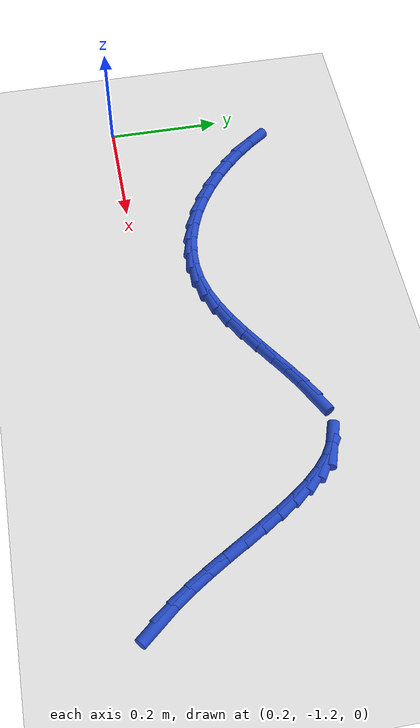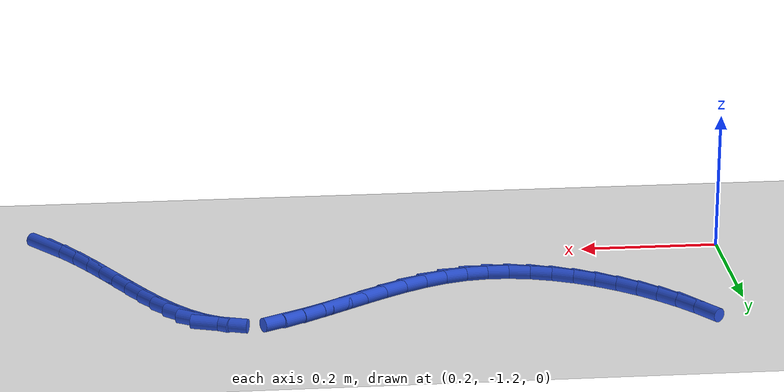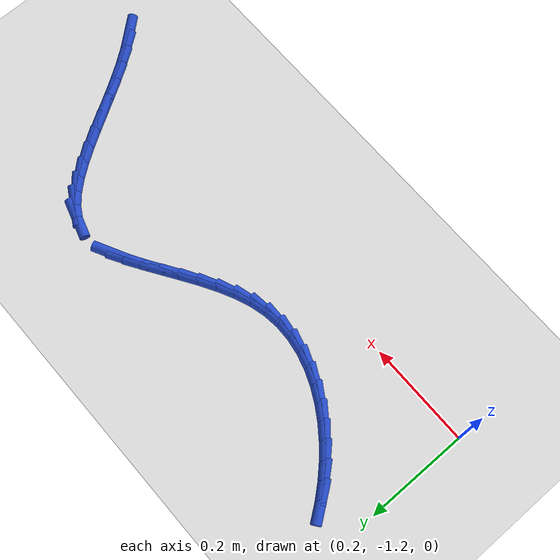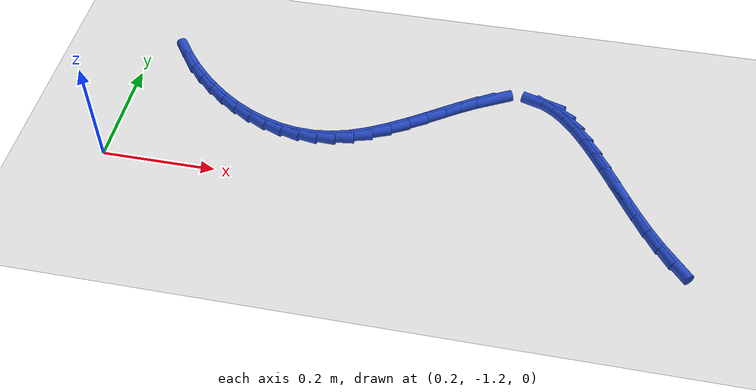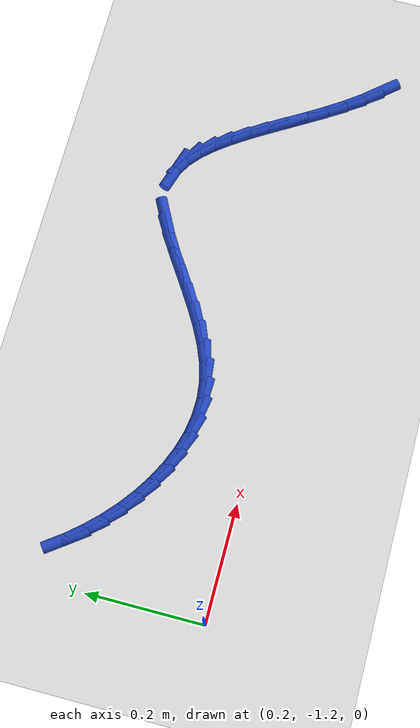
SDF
<sdf version="1.6">
 <world name="default">
  <model name="ground_plane">
   <static>1</static>
   <link name="link">
    <collision name="collision">
     <geometry><plane><normal>0 0 1</normal><size>100 100</size></plane></geometry>
     <surface><friction><ode><mu>100</mu><mu2>50</mu2></ode></friction></surface>
    </collision>
    <visual name="visual">
     <cast_shadows>0</cast_shadows>
     <geometry><plane><normal>0 0 1</normal><size>100 100</size></plane></geometry>
     <material>
      <script><uri>file://media/materials/scripts/gazebo.material</uri><name>Gazebo/WhiteGlow</name></script>
     </material>
    </visual>
   </link>
  </model>
  <model name="line">
   <link name="link_202">
    <pose>1.1746801814636494 -1.257423109678454 0.01 0 1.57 -0.8694576224787947</pose>
    <collision name="collision">
     <geometry><cylinder><radius>0.01</radius><length>0.08</length></cylinder></geometry>
    </collision>
    <visual name="visual">
     <material>
      <script><name>Gazebo/Blue</name><uri>file://media/materials/scripts/gazebo.material</uri></script>
     </material>
     <geometry><cylinder><radius>0.01</radius><length>0.08</length></cylinder></geometry>
    </visual>
   </link>
   <link name="link_203">
    <pose>1.1533670255257007 -1.2321878794401409 0.01 0 1.57 -0.9373500251384979</pose>
    <collision name="collision">
     <geometry><cylinder><radius>0.01</radius><length>0.08</length></cylinder></geometry>
    </collision>
    <visual name="visual">
     <material>
      <script><name>Gazebo/Blue</name><uri>file://media/materials/scripts/gazebo.material</uri></script>
     </material>
     <geometry><cylinder><radius>0.01</radius><length>0.08</length></cylinder></geometry>
    </visual>
   </link>
   <link name="link_204">
    <pose>1.1329652245301907 -1.2044078925939352 0.01 0 1.57 -0.9846037328601056</pose>
    <collision name="collision">
     <geometry><cylinder><radius>0.01</radius><length>0.08</length></cylinder></geometry>
    </collision>
    <visual name="visual">
     <material>
      <script><name>Gazebo/Blue</name><uri>file://media/materials/scripts/gazebo.material</uri></script>
     </material>
     <geometry><cylinder><radius>0.01</radius><length>0.08</length></cylinder></geometry>
    </visual>
   </link>
   <link name="link_205">
    <pose>1.1132945576169517 -1.1747858637657724 0.01 0 1.57 -1.0141224252620311</pose>
    <collision name="collision">
     <geometry><cylinder><radius>0.01</radius><length>0.08</length></cylinder></geometry>
    </collision>
    <visual name="visual">
     <material>
      <script><name>Gazebo/Blue</name><uri>file://media/materials/scripts/gazebo.material</uri></script>
     </material>
     <geometry><cylinder><radius>0.01</radius><length>0.08</length></cylinder></geometry>
    </visual>
   </link>
   <link name="link_206">
    <pose>1.0941799209303698 -1.144071019262089 0.01 0 1.57 -1.0280446057666501</pose>
    <collision name="collision">
     <geometry><cylinder><radius>0.01</radius><length>0.08</length></cylinder></geometry>
    </collision>
    <visual name="visual">
     <material>
      <script><name>Gazebo/Blue</name><uri>file://media/materials/scripts/gazebo.material</uri></script>
     </material>
     <geometry><cylinder><radius>0.01</radius><length>0.08</length></cylinder></geometry>
    </visual>
   </link>
   <link name="link_207">
    <pose>1.0754462106148281 -1.113012585389318 0.01 0 1.57 -1.0271158571693322</pose>
    <collision name="collision">
     <geometry><cylinder><radius>0.01</radius><length>0.08</length></cylinder></geometry>
    </collision>
    <visual name="visual">
     <material>
      <script><name>Gazebo/Blue</name><uri>file://media/materials/scripts/gazebo.material</uri></script>
     </material>
     <geometry><cylinder><radius>0.01</radius><length>0.08</length></cylinder></geometry>
    </visual>
   </link>
   <link name="link_208">
    <pose>1.0569183228147128 -1.0823597884538967 0.01 0 1.57 -1.0107122934479231</pose>
    <collision name="collision">
     <geometry><cylinder><radius>0.01</radius><length>0.08</length></cylinder></geometry>
    </collision>
    <visual name="visual">
     <material>
      <script><name>Gazebo/Blue</name><uri>file://media/materials/scripts/gazebo.material</uri></script>
     </material>
     <geometry><cylinder><radius>0.01</radius><length>0.08</length></cylinder></geometry>
    </visual>
   </link>
   <link name="link_209">
    <pose>1.0384211536744077 -1.0528618547622577 0.01 0 1.57 -0.9766556507612796</pose>
    <collision name="collision">
     <geometry><cylinder><radius>0.01</radius><length>0.08</length></cylinder></geometry>
    </collision>
    <visual name="visual">
     <material>
      <script><name>Gazebo/Blue</name><uri>file://media/materials/scripts/gazebo.material</uri></script>
     </material>
     <geometry><cylinder><radius>0.01</radius><length>0.08</length></cylinder></geometry>
    </visual>
   </link>
   <link name="link_210">
    <pose>1.019779599338298 -1.0252680106208376 0.01 0 1.57 -0.9207672561650833</pose>
    <collision name="collision">
     <geometry><cylinder><radius>0.01</radius><length>0.08</length></cylinder></geometry>
    </collision>
    <visual name="visual">
     <material>
      <script><name>Gazebo/Blue</name><uri>file://media/materials/scripts/gazebo.material</uri></script>
     </material>
     <geometry><cylinder><radius>0.01</radius><length>0.08</length></cylinder></geometry>
    </visual>
   </link>
   <link name="link_211">
    <pose>1.0008185559507679 -1.0003274823360697 0.01 0 1.57 -0.8361514616978324</pose>
    <collision name="collision">
     <geometry><cylinder><radius>0.01</radius><length>0.08</length></cylinder></geometry>
    </collision>
    <visual name="visual">
     <material>
      <script><name>Gazebo/Blue</name><uri>file://media/materials/scripts/gazebo.material</uri></script>
     </material>
     <geometry><cylinder><radius>0.01</radius><length>0.08</length></cylinder></geometry>
    </visual>
   </link>
   <link name="link_212">
    <pose>0.9813629196562028 -0.978789496214391 0.01 0 1.57 -0.7125069460921573</pose>
    <collision name="collision">
     <geometry><cylinder><radius>0.01</radius><length>0.08</length></cylinder></geometry>
    </collision>
    <visual name="visual">
     <material>
      <script><name>Gazebo/Blue</name><uri>file://media/materials/scripts/gazebo.material</uri></script>
     </material>
     <geometry><cylinder><radius>0.01</radius><length>0.08</length></cylinder></geometry>
    </visual>
   </link>
   <link name="link_213">
    <pose>0.9612375865989868 -0.9614032785622347 0.01 0 1.57 -0.5370163856510745</pose>
    <collision name="collision">
     <geometry><cylinder><radius>0.01</radius><length>0.08</length></cylinder></geometry>
    </collision>
    <visual name="visual">
     <material>
      <script><name>Gazebo/Blue</name><uri>file://media/materials/scripts/gazebo.material</uri></script>
     </material>
     <geometry><cylinder><radius>0.01</radius><length>0.08</length></cylinder></geometry>
    </visual>
   </link>
   <link name="link_214">
    <pose>0.9402674529235053 -0.9489180556860366 0.01 0 1.57 -0.30135601421333846</pose>
    <collision name="collision">
     <geometry><cylinder><radius>0.01</radius><length>0.08</length></cylinder></geometry>
    </collision>
    <visual name="visual">
     <material>
      <script><name>Gazebo/Blue</name><uri>file://media/materials/scripts/gazebo.material</uri></script>
     </material>
     <geometry><cylinder><radius>0.01</radius><length>0.08</length></cylinder></geometry>
    </visual>
   </link>
   <link name="link_218">
    <pose>0.8454109447979264 -0.95649758229843 0.01 0 1.57 0.47735937970174863</pose>
    <collision name="collision">
     <geometry><cylinder><radius>0.01</radius><length>0.08</length></cylinder></geometry>
    </collision>
    <visual name="visual">
     <material>
      <script><name>Gazebo/Blue</name><uri>file://media/materials/scripts/gazebo.material</uri></script>
     </material>
     <geometry><cylinder><radius>0.01</radius><length>0.08</length></cylinder></geometry>
    </visual>
   </link>
   <link name="link_219">
    <pose>0.8190371145952575 -0.9701396865421069 0.01 0 1.57 0.5420336808586073</pose>
    <collision name="collision">
     <geometry><cylinder><radius>0.01</radius><length>0.08</length></cylinder></geometry>
    </collision>
    <visual name="visual">
     <material>
      <script><name>Gazebo/Blue</name><uri>file://media/materials/scripts/gazebo.material</uri></script>
     </material>
     <geometry><cylinder><radius>0.01</radius><length>0.08</length></cylinder></geometry>
    </visual>
   </link>
   <link name="link_220">
    <pose>0.7917630389084235 -0.9865640644369712 0.01 0 1.57 0.5755453365556754</pose>
    <collision name="collision">
     <geometry><cylinder><radius>0.01</radius><length>0.08</length></cylinder></geometry>
    </collision>
    <visual name="visual">
     <material>
      <script><name>Gazebo/Blue</name><uri>file://media/materials/scripts/gazebo.material</uri></script>
     </material>
     <geometry><cylinder><radius>0.01</radius><length>0.08</length></cylinder></geometry>
    </visual>
   </link>
   <link name="link_221">
    <pose>0.7636740976184755 -1.0047887348679003 0.01 0 1.57 0.5839243911156266</pose>
    <collision name="collision">
     <geometry><cylinder><radius>0.01</radius><length>0.08</length></cylinder></geometry>
    </collision>
    <visual name="visual">
     <material>
      <script><name>Gazebo/Blue</name><uri>file://media/materials/scripts/gazebo.material</uri></script>
     </material>
     <geometry><cylinder><radius>0.01</radius><length>0.08</length></cylinder></geometry>
    </visual>
   </link>
   <link name="link_222">
    <pose>0.7348556706064608 -1.0238317167197755 0.01 0 1.57 0.5698738112778938</pose>
    <collision name="collision">
     <geometry><cylinder><radius>0.01</radius><length>0.08</length></cylinder></geometry>
    </collision>
    <visual name="visual">
     <material>
      <script><name>Gazebo/Blue</name><uri>file://media/materials/scripts/gazebo.material</uri></script>
     </material>
     <geometry><cylinder><radius>0.01</radius><length>0.08</length></cylinder></geometry>
    </visual>
   </link>
   <link name="link_223">
    <pose>0.7053931377534302 -1.0427110288774748 0.01 0 1.57 0.5335557627992287</pose>
    <collision name="collision">
     <geometry><cylinder><radius>0.01</radius><length>0.08</length></cylinder></geometry>
    </collision>
    <visual name="visual">
     <material>
      <script><name>Gazebo/Blue</name><uri>file://media/materials/scripts/gazebo.material</uri></script>
     </material>
     <geometry><cylinder><radius>0.01</radius><length>0.08</length></cylinder></geometry>
    </visual>
   </link>
   <link name="link_224">
    <pose>0.6753718789404314 -1.0604446902258793 0.01 0 1.57 0.473014156870887</pose>
    <collision name="collision">
     <geometry><cylinder><radius>0.01</radius><length>0.08</length></cylinder></geometry>
    </collision>
    <visual name="visual">
     <material>
      <script><name>Gazebo/Blue</name><uri>file://media/materials/scripts/gazebo.material</uri></script>
     </material>
     <geometry><cylinder><radius>0.01</radius><length>0.08</length></cylinder></geometry>
    </visual>
   </link>
   <link name="link_225">
    <pose>0.6448772740485149 -1.076050719649867 0.01 0 1.57 0.3845025487691241</pose>
    <collision name="collision">
     <geometry><cylinder><radius>0.01</radius><length>0.08</length></cylinder></geometry>
    </collision>
    <visual name="visual">
     <material>
      <script><name>Gazebo/Blue</name><uri>file://media/materials/scripts/gazebo.material</uri></script>
     </material>
     <geometry><cylinder><radius>0.01</radius><length>0.08</length></cylinder></geometry>
    </visual>
   </link>
   <link name="link_226">
    <pose>0.6139947029587292 -1.0885471360343182 0.01 0 1.57 0.26327999827901094</pose>
    <collision name="collision">
     <geometry><cylinder><radius>0.01</radius><length>0.08</length></cylinder></geometry>
    </collision>
    <visual name="visual">
     <material>
      <script><name>Gazebo/Blue</name><uri>file://media/materials/scripts/gazebo.material</uri></script>
     </material>
     <geometry><cylinder><radius>0.01</radius><length>0.08</length></cylinder></geometry>
    </visual>
   </link>
   <link name="link_227">
    <pose>0.5828096148070278 -1.0969526629360606 0.01 0 1.57 0.11637676690906135</pose>
    <collision name="collision">
     <geometry><cylinder><radius>0.01</radius><length>0.08</length></cylinder></geometry>
    </collision>
    <visual name="visual">
     <material>
      <script><name>Gazebo/Blue</name><uri>file://media/materials/scripts/gazebo.material</uri></script>
     </material>
     <geometry><cylinder><radius>0.01</radius><length>0.08</length></cylinder></geometry>
    </visual>
   </link>
   <link name="link_228">
    <pose>0.5514402716007922 -1.100619896435095 0.01 0 1.57 -0.027168045208850994</pose>
    <collision name="collision">
     <geometry><cylinder><radius>0.01</radius><length>0.08</length></cylinder></geometry>
    </collision>
    <visual name="visual">
     <material>
      <script><name>Gazebo/Blue</name><uri>file://media/materials/scripts/gazebo.material</uri></script>
     </material>
     <geometry><cylinder><radius>0.01</radius><length>0.08</length></cylinder></geometry>
    </visual>
   </link>
   <link name="link_229">
    <pose>0.5200900977285495 -1.0997679638791462 0.01 0 1.57 -0.15975140122383324</pose>
    <collision name="collision">
     <geometry><cylinder><radius>0.01</radius><length>0.08</length></cylinder></geometry>
    </collision>
    <visual name="visual">
     <material>
      <script><name>Gazebo/Blue</name><uri>file://media/materials/scripts/gazebo.material</uri></script>
     </material>
     <geometry><cylinder><radius>0.01</radius><length>0.08</length></cylinder></geometry>
    </visual>
   </link>
   <link name="link_230">
    <pose>0.48897615445767173 -1.0947547485049947 0.01 0 1.57 -0.2800003619368319</pose>
    <collision name="collision">
     <geometry><cylinder><radius>0.01</radius><length>0.08</length></cylinder></geometry>
    </collision>
    <visual name="visual">
     <material>
      <script><name>Gazebo/Blue</name><uri>file://media/materials/scripts/gazebo.material</uri></script>
     </material>
     <geometry><cylinder><radius>0.01</radius><length>0.08</length></cylinder></geometry>
    </visual>
   </link>
   <link name="link_231">
    <pose>0.45831550305552754 -1.0859381335494198 0.01 0 1.57 -0.3881294088254577</pose>
    <collision name="collision">
     <geometry><cylinder><radius>0.01</radius><length>0.08</length></cylinder></geometry>
    </collision>
    <visual name="visual">
     <material>
      <script><name>Gazebo/Blue</name><uri>file://media/materials/scripts/gazebo.material</uri></script>
     </material>
     <geometry><cylinder><radius>0.01</radius><length>0.08</length></cylinder></geometry>
    </visual>
   </link>
   <link name="link_232">
    <pose>0.428325204789489 -1.073676002249202 0.01 0 1.57 -0.48535086108246905</pose>
    <collision name="collision">
     <geometry><cylinder><radius>0.01</radius><length>0.08</length></cylinder></geometry>
    </collision>
    <visual name="visual">
     <material>
      <script><name>Gazebo/Blue</name><uri>file://media/materials/scripts/gazebo.material</uri></script>
     </material>
     <geometry><cylinder><radius>0.01</radius><length>0.08</length></cylinder></geometry>
    </visual>
   </link>
   <link name="link_233">
    <pose>0.3992223209269248 -1.0583262378411213 0.01 0 1.57 -0.5733701788802678</pose>
    <collision name="collision">
     <geometry><cylinder><radius>0.01</radius><length>0.08</length></cylinder></geometry>
    </collision>
    <visual name="visual">
     <material>
      <script><name>Gazebo/Blue</name><uri>file://media/materials/scripts/gazebo.material</uri></script>
     </material>
     <geometry><cylinder><radius>0.01</radius><length>0.08</length></cylinder></geometry>
    </visual>
   </link>
   <link name="link_234">
    <pose>0.3712239127352068 -1.0402467235619581 0.01 0 1.57 -0.6540617818787603</pose>
    <collision name="collision">
     <geometry><cylinder><radius>0.01</radius><length>0.08</length></cylinder></geometry>
    </collision>
    <visual name="visual">
     <material>
      <script><name>Gazebo/Blue</name><uri>file://media/materials/scripts/gazebo.material</uri></script>
     </material>
     <geometry><cylinder><radius>0.01</radius><length>0.08</length></cylinder></geometry>
    </visual>
   </link>
   <link name="link_235">
    <pose>0.34454704148170445 -1.0197953426484916 0.01 0 1.57 -0.729307805760369</pose>
    <collision name="collision">
     <geometry><cylinder><radius>0.01</radius><length>0.08</length></cylinder></geometry>
    </collision>
    <visual name="visual">
     <material>
      <script><name>Gazebo/Blue</name><uri>file://media/materials/scripts/gazebo.material</uri></script>
     </material>
     <geometry><cylinder><radius>0.01</radius><length>0.08</length></cylinder></geometry>
    </visual>
   </link>
   <link name="link_236">
    <pose>0.31940876843378757 -0.9973299783375017 0.01 0 1.57 -0.8009503298134124</pose>
    <collision name="collision">
     <geometry><cylinder><radius>0.01</radius><length>0.08</length></cylinder></geometry>
    </collision>
    <visual name="visual">
     <material>
      <script><name>Gazebo/Blue</name><uri>file://media/materials/scripts/gazebo.material</uri></script>
     </material>
     <geometry><cylinder><radius>0.01</radius><length>0.08</length></cylinder></geometry>
    </visual>
   </link>
   <link name="link_237">
    <pose>0.2960261548588277 -0.9732085138657696 0.01 0 1.57 -0.8708149547448015</pose>
    <collision name="collision">
     <geometry><cylinder><radius>0.01</radius><length>0.08</length></cylinder></geometry>
    </collision>
    <visual name="visual">
     <material>
      <script><name>Gazebo/Blue</name><uri>file://media/materials/scripts/gazebo.material</uri></script>
     </material>
     <geometry><cylinder><radius>0.01</radius><length>0.08</length></cylinder></geometry>
    </visual>
   </link>
   <link name="link_238">
    <pose>0.27461626202419415 -0.9477888324700737 0.01 0 1.57 -0.9407007477429303</pose>
    <collision name="collision">
     <geometry><cylinder><radius>0.01</radius><length>0.08</length></cylinder></geometry>
    </collision>
    <visual name="visual">
     <material>
      <script><name>Gazebo/Blue</name><uri>file://media/materials/scripts/gazebo.material</uri></script>
     </material>
     <geometry><cylinder><radius>0.01</radius><length>0.08</length></cylinder></geometry>
    </visual>
   </link>
  </model>
 </world>
</sdf>
